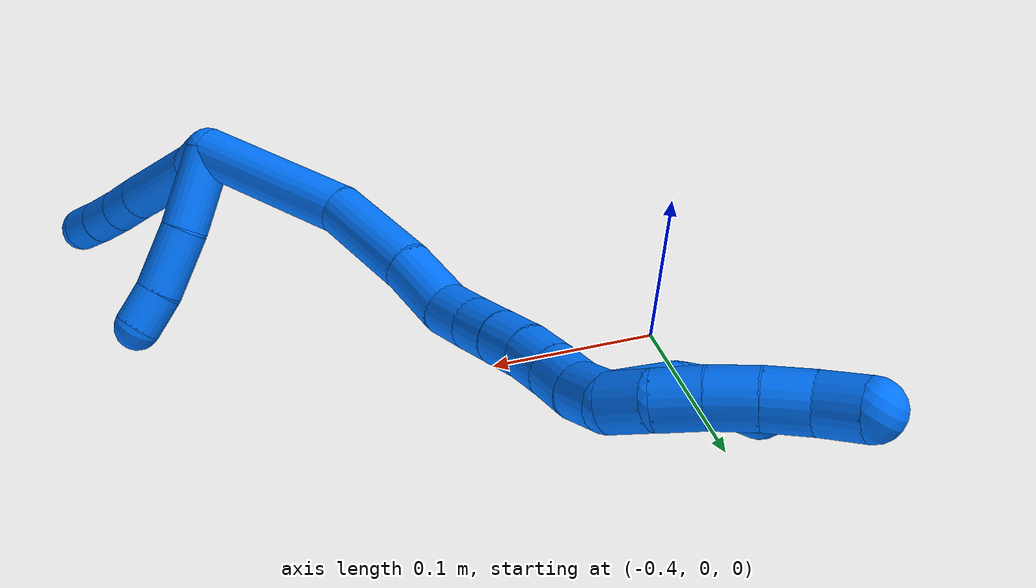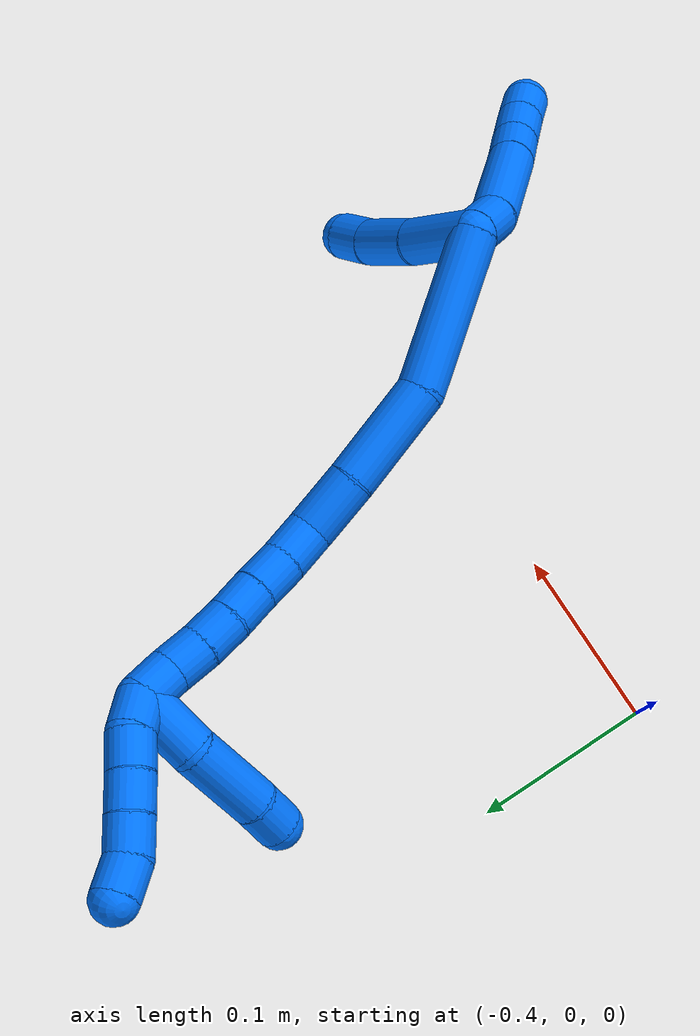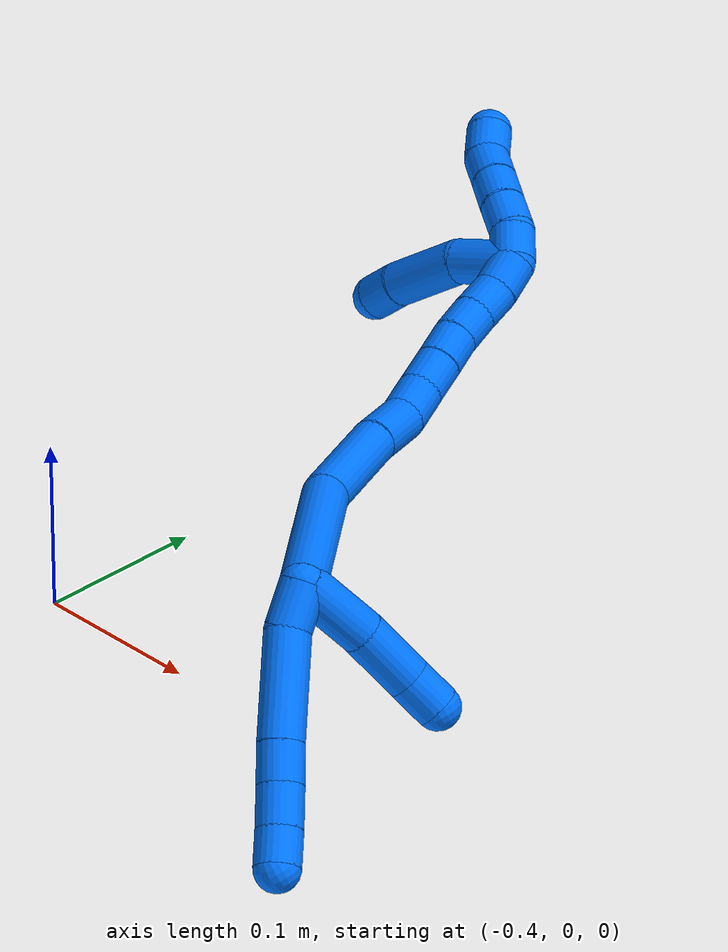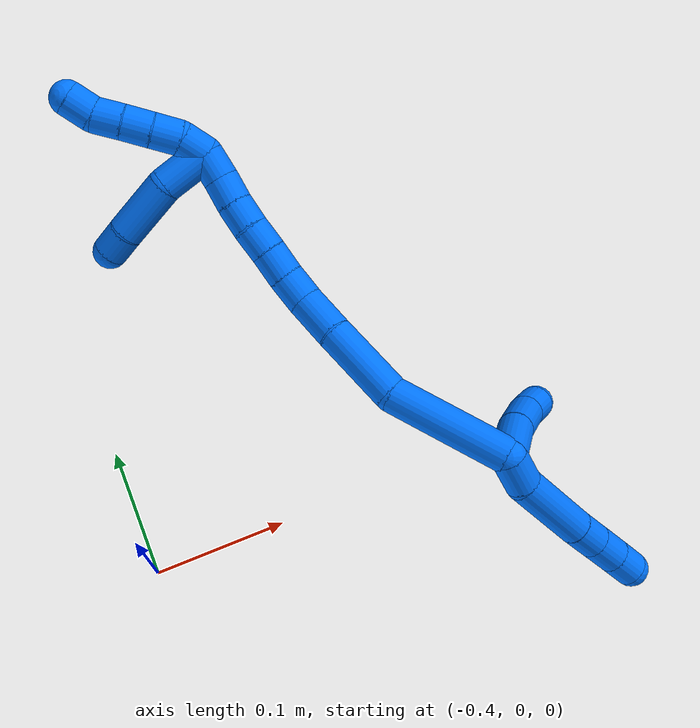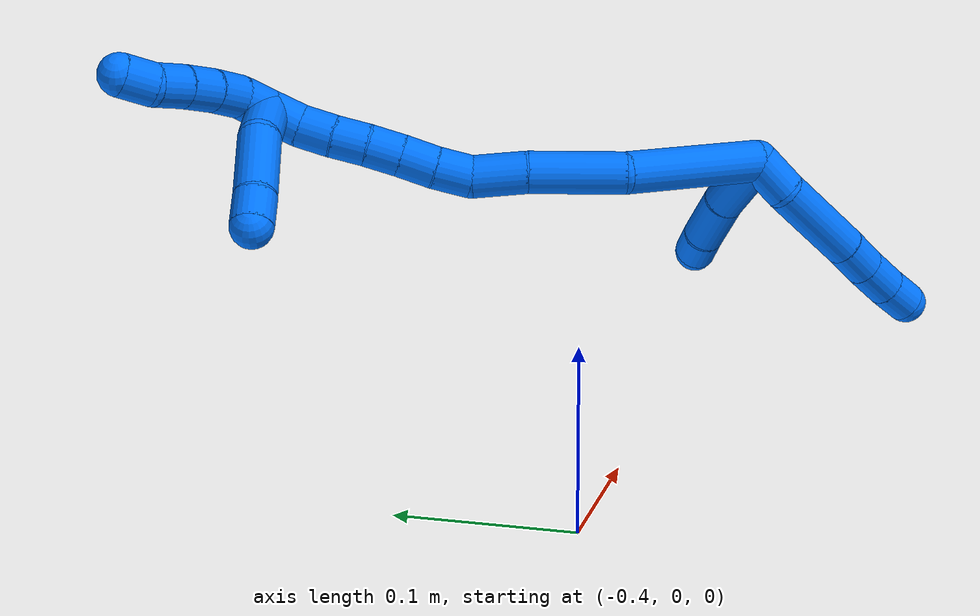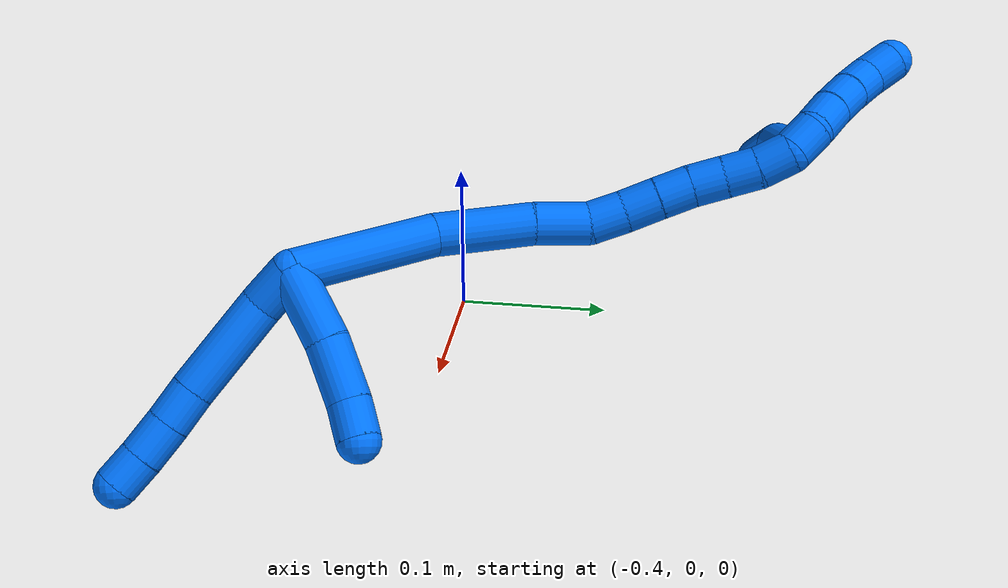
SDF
<sdf version="1.7">
 <world name="default">
  <model name="14">
   <static>0</static>
   <link name="14">
    <collision name="collision-cylinder-e_1_2_8">
     <pose>-0.007176 -0.006778 -0.008016 2.43964 -0.599633 -1.40238</pose>
     <geometry><cylinder><radius>0.0125</radius><length>0.025432</length></cylinder></geometry>
     <surface>
      <friction><ode><mu>1.16</mu><mu2>1.16</mu2><slip1>0</slip1><slip2>0</slip2></ode></friction>
      <contact><ode><kp>1e+06</kp><kd>1</kd><max_vel>0</max_vel><min_depth>0.001</min_depth></ode></contact>
     </surface>
    </collision>
    <visual name="visual-cylinder-e_1_2_8">
     <pose>-0.007176 -0.006778 -0.008016 2.43964 -0.599633 -1.40238</pose>
     <geometry><cylinder><radius>0.0125</radius><length>0.025432</length></cylinder></geometry>
     <material><ambient>0 0.462745 1 1</ambient></material>
    </visual>
    <collision name="collision-cylinder-e_2_8_9">
     <pose>-0.023122 -0.031347 -0.038034 2.46165 -0.300543 -0.808949</pose>
     <geometry><cylinder><radius>0.0125</radius><length>0.059246</length></cylinder></geometry>
     <surface>
      <friction><ode><mu>1.16</mu><mu2>1.16</mu2><slip1>0</slip1><slip2>0</slip2></ode></friction>
      <contact><ode><kp>1e+06</kp><kd>1</kd><max_vel>0</max_vel><min_depth>0.001</min_depth></ode></contact>
     </surface>
    </collision>
    <visual name="visual-cylinder-e_2_8_9">
     <pose>-0.023122 -0.031347 -0.038034 2.46165 -0.300543 -0.808949</pose>
     <geometry><cylinder><radius>0.0125</radius><length>0.059246</length></cylinder></geometry>
     <material><ambient>0 0.462745 1 1</ambient></material>
    </visual>
    <collision name="collision-cylinder-e_3_9_10">
     <pose>-0.034832 -0.055425 -0.068583 2.50732 -0.270378 -0.785753</pose>
     <geometry><cylinder><radius>0.0125</radius><length>0.02202</length></cylinder></geometry>
     <surface>
      <friction><ode><mu>1.16</mu><mu2>1.16</mu2><slip1>0</slip1><slip2>0</slip2></ode></friction>
      <contact><ode><kp>1e+06</kp><kd>1</kd><max_vel>0</max_vel><min_depth>0.001</min_depth></ode></contact>
     </surface>
    </collision>
    <visual name="visual-cylinder-e_3_9_10">
     <pose>-0.034832 -0.055425 -0.068583 2.50732 -0.270378 -0.785753</pose>
     <geometry><cylinder><radius>0.0125</radius><length>0.02202</length></cylinder></geometry>
     <material><ambient>0 0.462745 1 1</ambient></material>
    </visual>
    <collision name="collision-cylinder-e_4_10_11">
     <pose>-0.040773 -0.068713 -0.085824 2.46377 -0.262557 -0.716769</pose>
     <geometry><cylinder><radius>0.0125</radius><length>0.023117</length></cylinder></geometry>
     <surface>
      <friction><ode><mu>1.16</mu><mu2>1.16</mu2><slip1>0</slip1><slip2>0</slip2></ode></friction>
      <contact><ode><kp>1e+06</kp><kd>1</kd><max_vel>0</max_vel><min_depth>0.001</min_depth></ode></contact>
     </surface>
    </collision>
    <visual name="visual-cylinder-e_4_10_11">
     <pose>-0.040773 -0.068713 -0.085824 2.46377 -0.262557 -0.716769</pose>
     <geometry><cylinder><radius>0.0125</radius><length>0.023117</length></cylinder></geometry>
     <material><ambient>0 0.462745 1 1</ambient></material>
    </visual>
    <collision name="collision-cylinder-e_5_11_6">
     <pose>-0.046411 -0.082224 -0.101765 2.40953 -0.264455 -0.667983</pose>
     <geometry><cylinder><radius>0.0125</radius><length>0.020185</length></cylinder></geometry>
     <surface>
      <friction><ode><mu>1.16</mu><mu2>1.16</mu2><slip1>0</slip1><slip2>0</slip2></ode></friction>
      <contact><ode><kp>1e+06</kp><kd>1</kd><max_vel>0</max_vel><min_depth>0.001</min_depth></ode></contact>
     </surface>
    </collision>
    <visual name="visual-cylinder-e_5_11_6">
     <pose>-0.046411 -0.082224 -0.101765 2.40953 -0.264455 -0.667983</pose>
     <geometry><cylinder><radius>0.0125</radius><length>0.020185</length></cylinder></geometry>
     <material><ambient>0 0.462745 1 1</ambient></material>
    </visual>
    <collision name="collision-cylinder-e_1_2_12">
     <pose>0.003874 0.008008 -0.019588 -2.75352 0.181048 -0.86545</pose>
     <geometry><cylinder><radius>0.0125</radius><length>0.043026</length></cylinder></geometry>
     <surface>
      <friction><ode><mu>1.16</mu><mu2>1.16</mu2><slip1>0</slip1><slip2>0</slip2></ode></friction>
      <contact><ode><kp>1e+06</kp><kd>1</kd><max_vel>0</max_vel><min_depth>0.001</min_depth></ode></contact>
     </surface>
    </collision>
    <visual name="visual-cylinder-e_1_2_12">
     <pose>0.003874 0.008008 -0.019588 -2.75352 0.181048 -0.86545</pose>
     <geometry><cylinder><radius>0.0125</radius><length>0.043026</length></cylinder></geometry>
     <material><ambient>0 0.462745 1 1</ambient></material>
    </visual>
    <collision name="collision-cylinder-e_2_12_13">
     <pose>0.010522 0.020522 -0.056022 -2.88021 0.157793 -1.08304</pose>
     <geometry><cylinder><radius>0.0125</radius><length>0.035317</length></cylinder></geometry>
     <surface>
      <friction><ode><mu>1.16</mu><mu2>1.16</mu2><slip1>0</slip1><slip2>0</slip2></ode></friction>
      <contact><ode><kp>1e+06</kp><kd>1</kd><max_vel>0</max_vel><min_depth>0.001</min_depth></ode></contact>
     </surface>
    </collision>
    <visual name="visual-cylinder-e_2_12_13">
     <pose>0.010522 0.020522 -0.056022 -2.88021 0.157793 -1.08304</pose>
     <geometry><cylinder><radius>0.0125</radius><length>0.035317</length></cylinder></geometry>
     <material><ambient>0 0.462745 1 1</ambient></material>
    </visual>
    <collision name="collision-cylinder-e_3_13_5">
     <pose>0.015875 0.026384 -0.083299 -3.0123 0.240396 -2.15758</pose>
     <geometry><cylinder><radius>0.0125</radius><length>0.021657</length></cylinder></geometry>
     <surface>
      <friction><ode><mu>1.16</mu><mu2>1.16</mu2><slip1>0</slip1><slip2>0</slip2></ode></friction>
      <contact><ode><kp>1e+06</kp><kd>1</kd><max_vel>0</max_vel><min_depth>0.001</min_depth></ode></contact>
     </surface>
    </collision>
    <visual name="visual-cylinder-e_3_13_5">
     <pose>0.015875 0.026384 -0.083299 -3.0123 0.240396 -2.15758</pose>
     <geometry><cylinder><radius>0.0125</radius><length>0.021657</length></cylinder></geometry>
     <material><ambient>0 0.462745 1 1</ambient></material>
    </visual>
    <collision name="collision-cylinder-e_1_2_14">
     <pose>-0.001848 0.042261 0.010521 -1.3268 -0.042417 0.033154</pose>
     <geometry><cylinder><radius>0.0125</radius><length>0.08718</length></cylinder></geometry>
     <surface>
      <friction><ode><mu>1.16</mu><mu2>1.16</mu2><slip1>0</slip1><slip2>0</slip2></ode></friction>
      <contact><ode><kp>1e+06</kp><kd>1</kd><max_vel>0</max_vel><min_depth>0.001</min_depth></ode></contact>
     </surface>
    </collision>
    <visual name="visual-cylinder-e_1_2_14">
     <pose>-0.001848 0.042261 0.010521 -1.3268 -0.042417 0.033154</pose>
     <geometry><cylinder><radius>0.0125</radius><length>0.08718</length></cylinder></geometry>
     <material><ambient>0 0.462745 1 1</ambient></material>
    </visual>
    <collision name="collision-cylinder-e_2_14_15">
     <pose>0.00323 0.112293 0.023253 -1.49137 0.243697 -0.225234</pose>
     <geometry><cylinder><radius>0.0125</radius><length>0.057415</length></cylinder></geometry>
     <surface>
      <friction><ode><mu>1.16</mu><mu2>1.16</mu2><slip1>0</slip1><slip2>0</slip2></ode></friction>
      <contact><ode><kp>1e+06</kp><kd>1</kd><max_vel>0</max_vel><min_depth>0.001</min_depth></ode></contact>
     </surface>
    </collision>
    <visual name="visual-cylinder-e_2_14_15">
     <pose>0.00323 0.112293 0.023253 -1.49137 0.243697 -0.225234</pose>
     <geometry><cylinder><radius>0.0125</radius><length>0.057415</length></cylinder></geometry>
     <material><ambient>0 0.462745 1 1</ambient></material>
    </visual>
    <collision name="collision-cylinder-e_3_15_16">
     <pose>0.013745 0.155837 0.024945 -1.60364 0.223562 -0.230961</pose>
     <geometry><cylinder><radius>0.0125</radius><length>0.032369</length></cylinder></geometry>
     <surface>
      <friction><ode><mu>1.16</mu><mu2>1.16</mu2><slip1>0</slip1><slip2>0</slip2></ode></friction>
      <contact><ode><kp>1e+06</kp><kd>1</kd><max_vel>0</max_vel><min_depth>0.001</min_depth></ode></contact>
     </surface>
    </collision>
    <visual name="visual-cylinder-e_3_15_16">
     <pose>0.013745 0.155837 0.024945 -1.60364 0.223562 -0.230961</pose>
     <geometry><cylinder><radius>0.0125</radius><length>0.032369</length></cylinder></geometry>
     <material><ambient>0 0.462745 1 1</ambient></material>
    </visual>
    <collision name="collision-cylinder-e_4_16_17">
     <pose>0.021475 0.181281 0.027287 -1.28327 0.389686 -0.292762</pose>
     <geometry><cylinder><radius>0.0125</radius><length>0.021804</length></cylinder></geometry>
     <surface>
      <friction><ode><mu>1.16</mu><mu2>1.16</mu2><slip1>0</slip1><slip2>0</slip2></ode></friction>
      <contact><ode><kp>1e+06</kp><kd>1</kd><max_vel>0</max_vel><min_depth>0.001</min_depth></ode></contact>
     </surface>
    </collision>
    <visual name="visual-cylinder-e_4_16_17">
     <pose>0.021475 0.181281 0.027287 -1.28327 0.389686 -0.292762</pose>
     <geometry><cylinder><radius>0.0125</radius><length>0.021804</length></cylinder></geometry>
     <material><ambient>0 0.462745 1 1</ambient></material>
    </visual>
    <collision name="collision-cylinder-e_5_17_18">
     <pose>0.030361 0.19975 0.033214 -1.23528 0.47101 -0.337665</pose>
     <geometry><cylinder><radius>0.0125</radius><length>0.020913</length></cylinder></geometry>
     <surface>
      <friction><ode><mu>1.16</mu><mu2>1.16</mu2><slip1>0</slip1><slip2>0</slip2></ode></friction>
      <contact><ode><kp>1e+06</kp><kd>1</kd><max_vel>0</max_vel><min_depth>0.001</min_depth></ode></contact>
     </surface>
    </collision>
    <visual name="visual-cylinder-e_5_17_18">
     <pose>0.030361 0.19975 0.033214 -1.23528 0.47101 -0.337665</pose>
     <geometry><cylinder><radius>0.0125</radius><length>0.020913</length></cylinder></geometry>
     <material><ambient>0 0.462745 1 1</ambient></material>
    </visual>
    <collision name="collision-cylinder-e_6_18_19">
     <pose>0.039272 0.217196 0.039155 -1.25005 0.428718 -0.31161</pose>
     <geometry><cylinder><radius>0.0125</radius><length>0.020039</length></cylinder></geometry>
     <surface>
      <friction><ode><mu>1.16</mu><mu2>1.16</mu2><slip1>0</slip1><slip2>0</slip2></ode></friction>
      <contact><ode><kp>1e+06</kp><kd>1</kd><max_vel>0</max_vel><min_depth>0.001</min_depth></ode></contact>
     </surface>
    </collision>
    <visual name="visual-cylinder-e_6_18_19">
     <pose>0.039272 0.217196 0.039155 -1.25005 0.428718 -0.31161</pose>
     <geometry><cylinder><radius>0.0125</radius><length>0.020039</length></cylinder></geometry>
     <material><ambient>0 0.462745 1 1</ambient></material>
    </visual>
    <collision name="collision-cylinder-e_7_19_20">
     <pose>0.047922 0.234596 0.043975 -1.35191 0.463861 -0.374395</pose>
     <geometry><cylinder><radius>0.0125</radius><length>0.020049</length></cylinder></geometry>
     <surface>
      <friction><ode><mu>1.16</mu><mu2>1.16</mu2><slip1>0</slip1><slip2>0</slip2></ode></friction>
      <contact><ode><kp>1e+06</kp><kd>1</kd><max_vel>0</max_vel><min_depth>0.001</min_depth></ode></contact>
     </surface>
    </collision>
    <visual name="visual-cylinder-e_7_19_20">
     <pose>0.047922 0.234596 0.043975 -1.35191 0.463861 -0.374395</pose>
     <geometry><cylinder><radius>0.0125</radius><length>0.020049</length></cylinder></geometry>
     <material><ambient>0 0.462745 1 1</ambient></material>
    </visual>
    <collision name="collision-cylinder-e_8_20_21">
     <pose>0.057609 0.251726 0.047729 -1.35835 0.54548 -0.444169</pose>
     <geometry><cylinder><radius>0.0125</radius><length>0.020053</length></cylinder></geometry>
     <surface>
      <friction><ode><mu>1.16</mu><mu2>1.16</mu2><slip1>0</slip1><slip2>0</slip2></ode></friction>
      <contact><ode><kp>1e+06</kp><kd>1</kd><max_vel>0</max_vel><min_depth>0.001</min_depth></ode></contact>
     </surface>
    </collision>
    <visual name="visual-cylinder-e_8_20_21">
     <pose>0.057609 0.251726 0.047729 -1.35835 0.54548 -0.444169</pose>
     <geometry><cylinder><radius>0.0125</radius><length>0.020053</length></cylinder></geometry>
     <material><ambient>0 0.462745 1 1</ambient></material>
    </visual>
    <collision name="collision-cylinder-e_9_21_1">
     <pose>0.068044 0.267951 0.053121 -1.14231 0.545338 -0.355589</pose>
     <geometry><cylinder><radius>0.0125</radius><length>0.020178</length></cylinder></geometry>
     <surface>
      <friction><ode><mu>1.16</mu><mu2>1.16</mu2><slip1>0</slip1><slip2>0</slip2></ode></friction>
      <contact><ode><kp>1e+06</kp><kd>1</kd><max_vel>0</max_vel><min_depth>0.001</min_depth></ode></contact>
     </surface>
    </collision>
    <visual name="visual-cylinder-e_9_21_1">
     <pose>0.068044 0.267951 0.053121 -1.14231 0.545338 -0.355589</pose>
     <geometry><cylinder><radius>0.0125</radius><length>0.020178</length></cylinder></geometry>
     <material><ambient>0 0.462745 1 1</ambient></material>
    </visual>
    <collision name="collision-cylinder-e_1_1_22">
     <pose>0.057681 0.281275 0.062643 -0.74515 -1.09283 0.466732</pose>
     <geometry><cylinder><radius>0.0125</radius><length>0.03513</length></cylinder></geometry>
     <surface>
      <friction><ode><mu>1.16</mu><mu2>1.16</mu2><slip1>0</slip1><slip2>0</slip2></ode></friction>
      <contact><ode><kp>1e+06</kp><kd>1</kd><max_vel>0</max_vel><min_depth>0.001</min_depth></ode></contact>
     </surface>
    </collision>
    <visual name="visual-cylinder-e_1_1_22">
     <pose>0.057681 0.281275 0.062643 -0.74515 -1.09283 0.466732</pose>
     <geometry><cylinder><radius>0.0125</radius><length>0.03513</length></cylinder></geometry>
     <material><ambient>0 0.462745 1 1</ambient></material>
    </visual>
    <collision name="collision-cylinder-e_2_22_23">
     <pose>0.020508 0.29284 0.069238 -1.46325 -1.29432 1.19235</pose>
     <geometry><cylinder><radius>0.0125</radius><length>0.044855</length></cylinder></geometry>
     <surface>
      <friction><ode><mu>1.16</mu><mu2>1.16</mu2><slip1>0</slip1><slip2>0</slip2></ode></friction>
      <contact><ode><kp>1e+06</kp><kd>1</kd><max_vel>0</max_vel><min_depth>0.001</min_depth></ode></contact>
     </surface>
    </collision>
    <visual name="visual-cylinder-e_2_22_23">
     <pose>0.020508 0.29284 0.069238 -1.46325 -1.29432 1.19235</pose>
     <geometry><cylinder><radius>0.0125</radius><length>0.044855</length></cylinder></geometry>
     <material><ambient>0 0.462745 1 1</ambient></material>
    </visual>
    <collision name="collision-cylinder-e_3_23_4">
     <pose>-0.010497 0.302139 0.068941 -1.8596 -1.22931 1.51541</pose>
     <geometry><cylinder><radius>0.0125</radius><length>0.020015</length></cylinder></geometry>
     <surface>
      <friction><ode><mu>1.16</mu><mu2>1.16</mu2><slip1>0</slip1><slip2>0</slip2></ode></friction>
      <contact><ode><kp>1e+06</kp><kd>1</kd><max_vel>0</max_vel><min_depth>0.001</min_depth></ode></contact>
     </surface>
    </collision>
    <visual name="visual-cylinder-e_3_23_4">
     <pose>-0.010497 0.302139 0.068941 -1.8596 -1.22931 1.51541</pose>
     <geometry><cylinder><radius>0.0125</radius><length>0.020015</length></cylinder></geometry>
     <material><ambient>0 0.462745 1 1</ambient></material>
    </visual>
    <collision name="collision-cylinder-e_1_1_24">
     <pose>0.074677 0.28317 0.063313 -0.840066 0.140367 -0.062772</pose>
     <geometry><cylinder><radius>0.0125</radius><length>0.02</length></cylinder></geometry>
     <surface>
      <friction><ode><mu>1.16</mu><mu2>1.16</mu2><slip1>0</slip1><slip2>0</slip2></ode></friction>
      <contact><ode><kp>1e+06</kp><kd>1</kd><max_vel>0</max_vel><min_depth>0.001</min_depth></ode></contact>
     </surface>
    </collision>
    <visual name="visual-cylinder-e_1_1_24">
     <pose>0.074677 0.28317 0.063313 -0.840066 0.140367 -0.062772</pose>
     <geometry><cylinder><radius>0.0125</radius><length>0.02</length></cylinder></geometry>
     <material><ambient>0 0.462745 1 1</ambient></material>
    </visual>
    <collision name="collision-cylinder-e_2_24_25">
     <pose>0.074379 0.298005 0.076359 -0.858902 -0.170508 0.078235</pose>
     <geometry><cylinder><radius>0.0125</radius><length>0.02</length></cylinder></geometry>
     <surface>
      <friction><ode><mu>1.16</mu><mu2>1.16</mu2><slip1>0</slip1><slip2>0</slip2></ode></friction>
      <contact><ode><kp>1e+06</kp><kd>1</kd><max_vel>0</max_vel><min_depth>0.001</min_depth></ode></contact>
     </surface>
    </collision>
    <visual name="visual-cylinder-e_2_24_25">
     <pose>0.074379 0.298005 0.076359 -0.858902 -0.170508 0.078235</pose>
     <geometry><cylinder><radius>0.0125</radius><length>0.02</length></cylinder></geometry>
     <material><ambient>0 0.462745 1 1</ambient></material>
    </visual>
    <collision name="collision-cylinder-e_3_25_26">
     <pose>0.070839 0.313385 0.08862 -0.936765 -0.185342 0.093971</pose>
     <geometry><cylinder><radius>0.0125</radius><length>0.02</length></cylinder></geometry>
     <surface>
      <friction><ode><mu>1.16</mu><mu2>1.16</mu2><slip1>0</slip1><slip2>0</slip2></ode></friction>
      <contact><ode><kp>1e+06</kp><kd>1</kd><max_vel>0</max_vel><min_depth>0.001</min_depth></ode></contact>
     </surface>
    </collision>
    <visual name="visual-cylinder-e_3_25_26">
     <pose>0.070839 0.313385 0.08862 -0.936765 -0.185342 0.093971</pose>
     <geometry><cylinder><radius>0.0125</radius><length>0.02</length></cylinder></geometry>
     <material><ambient>0 0.462745 1 1</ambient></material>
    </visual>
    <collision name="collision-cylinder-e_4_26_27">
     <pose>0.066862 0.329516 0.099735 -0.998301 -0.215107 0.117595</pose>
     <geometry><cylinder><radius>0.0125</radius><length>0.02</length></cylinder></geometry>
     <surface>
      <friction><ode><mu>1.16</mu><mu2>1.16</mu2><slip1>0</slip1><slip2>0</slip2></ode></friction>
      <contact><ode><kp>1e+06</kp><kd>1</kd><max_vel>0</max_vel><min_depth>0.001</min_depth></ode></contact>
     </surface>
    </collision>
    <visual name="visual-cylinder-e_4_26_27">
     <pose>0.066862 0.329516 0.099735 -0.998301 -0.215107 0.117595</pose>
     <geometry><cylinder><radius>0.0125</radius><length>0.02</length></cylinder></geometry>
     <material><ambient>0 0.462745 1 1</ambient></material>
    </visual>
    <collision name="collision-cylinder-e_5_27_3">
     <pose>0.065915 0.346136 0.110308 -1.01 0.119011 -0.065845</pose>
     <geometry><cylinder><radius>0.0125</radius><length>0.02</length></cylinder></geometry>
     <surface>
      <friction><ode><mu>1.16</mu><mu2>1.16</mu2><slip1>0</slip1><slip2>0</slip2></ode></friction>
      <contact><ode><kp>1e+06</kp><kd>1</kd><max_vel>0</max_vel><min_depth>0.001</min_depth></ode></contact>
     </surface>
    </collision>
    <visual name="visual-cylinder-e_5_27_3">
     <pose>0.065915 0.346136 0.110308 -1.01 0.119011 -0.065845</pose>
     <geometry><cylinder><radius>0.0125</radius><length>0.02</length></cylinder></geometry>
     <material><ambient>0 0.462745 1 1</ambient></material>
    </visual>
    <collision name="collision-sphere-3">
     <pose>0.067102 0.354544 0.115589 0 -0 0</pose>
     <geometry><sphere><radius>0.0125</radius></sphere></geometry>
     <surface>
      <friction><ode><mu>1.16</mu><mu2>1.16</mu2><slip1>0</slip1><slip2>0</slip2></ode></friction>
      <contact><ode><kp>1e+06</kp><kd>1</kd><max_vel>0</max_vel><min_depth>0.001</min_depth></ode></contact>
     </surface>
    </collision>
    <visual name="visual-sphere-3">
     <pose>0.067102 0.354544 0.115589 0 -0 0</pose>
     <geometry><sphere><radius>0.0125</radius></sphere></geometry>
     <material><ambient>0 0.462745 1 1</ambient></material>
    </visual>
    <collision name="collision-sphere-27">
     <pose>0.064727 0.337727 0.105027 0 -0 0</pose>
     <geometry><sphere><radius>0.0125</radius></sphere></geometry>
     <surface>
      <friction><ode><mu>1.16</mu><mu2>1.16</mu2><slip1>0</slip1><slip2>0</slip2></ode></friction>
      <contact><ode><kp>1e+06</kp><kd>1</kd><max_vel>0</max_vel><min_depth>0.001</min_depth></ode></contact>
     </surface>
    </collision>
    <visual name="visual-sphere-27">
     <pose>0.064727 0.337727 0.105027 0 -0 0</pose>
     <geometry><sphere><radius>0.0125</radius></sphere></geometry>
     <material><ambient>0 0.462745 1 1</ambient></material>
    </visual>
    <collision name="collision-sphere-26">
     <pose>0.068996 0.321304 0.094442 0 -0 0</pose>
     <geometry><sphere><radius>0.0125</radius></sphere></geometry>
     <surface>
      <friction><ode><mu>1.16</mu><mu2>1.16</mu2><slip1>0</slip1><slip2>0</slip2></ode></friction>
      <contact><ode><kp>1e+06</kp><kd>1</kd><max_vel>0</max_vel><min_depth>0.001</min_depth></ode></contact>
     </surface>
    </collision>
    <visual name="visual-sphere-26">
     <pose>0.068996 0.321304 0.094442 0 -0 0</pose>
     <geometry><sphere><radius>0.0125</radius></sphere></geometry>
     <material><ambient>0 0.462745 1 1</ambient></material>
    </visual>
    <collision name="collision-sphere-25">
     <pose>0.072682 0.305467 0.082797 0 -0 0</pose>
     <geometry><sphere><radius>0.0125</radius></sphere></geometry>
     <surface>
      <friction><ode><mu>1.16</mu><mu2>1.16</mu2><slip1>0</slip1><slip2>0</slip2></ode></friction>
      <contact><ode><kp>1e+06</kp><kd>1</kd><max_vel>0</max_vel><min_depth>0.001</min_depth></ode></contact>
     </surface>
    </collision>
    <visual name="visual-sphere-25">
     <pose>0.072682 0.305467 0.082797 0 -0 0</pose>
     <geometry><sphere><radius>0.0125</radius></sphere></geometry>
     <material><ambient>0 0.462745 1 1</ambient></material>
    </visual>
    <collision name="collision-sphere-24">
     <pose>0.076076 0.290544 0.069921 0 -0 0</pose>
     <geometry><sphere><radius>0.0125</radius></sphere></geometry>
     <surface>
      <friction><ode><mu>1.16</mu><mu2>1.16</mu2><slip1>0</slip1><slip2>0</slip2></ode></friction>
      <contact><ode><kp>1e+06</kp><kd>1</kd><max_vel>0</max_vel><min_depth>0.001</min_depth></ode></contact>
     </surface>
    </collision>
    <visual name="visual-sphere-24">
     <pose>0.076076 0.290544 0.069921 0 -0 0</pose>
     <geometry><sphere><radius>0.0125</radius></sphere></geometry>
     <material><ambient>0 0.462745 1 1</ambient></material>
    </visual>
    <collision name="collision-sphere-4">
     <pose>-0.019926 0.305352 0.067986 0 -0 0</pose>
     <geometry><sphere><radius>0.0125</radius></sphere></geometry>
     <surface>
      <friction><ode><mu>1.16</mu><mu2>1.16</mu2><slip1>0</slip1><slip2>0</slip2></ode></friction>
      <contact><ode><kp>1e+06</kp><kd>1</kd><max_vel>0</max_vel><min_depth>0.001</min_depth></ode></contact>
     </surface>
    </collision>
    <visual name="visual-sphere-4">
     <pose>-0.019926 0.305352 0.067986 0 -0 0</pose>
     <geometry><sphere><radius>0.0125</radius></sphere></geometry>
     <material><ambient>0 0.462745 1 1</ambient></material>
    </visual>
    <collision name="collision-sphere-23">
     <pose>-0.001067 0.298927 0.069895 0 -0 0</pose>
     <geometry><sphere><radius>0.0125</radius></sphere></geometry>
     <surface>
      <friction><ode><mu>1.16</mu><mu2>1.16</mu2><slip1>0</slip1><slip2>0</slip2></ode></friction>
      <contact><ode><kp>1e+06</kp><kd>1</kd><max_vel>0</max_vel><min_depth>0.001</min_depth></ode></contact>
     </surface>
    </collision>
    <visual name="visual-sphere-23">
     <pose>-0.001067 0.298927 0.069895 0 -0 0</pose>
     <geometry><sphere><radius>0.0125</radius></sphere></geometry>
     <material><ambient>0 0.462745 1 1</ambient></material>
    </visual>
    <collision name="collision-sphere-22">
     <pose>0.042084 0.286754 0.068581 0 -0 0</pose>
     <geometry><sphere><radius>0.0125</radius></sphere></geometry>
     <surface>
      <friction><ode><mu>1.16</mu><mu2>1.16</mu2><slip1>0</slip1><slip2>0</slip2></ode></friction>
      <contact><ode><kp>1e+06</kp><kd>1</kd><max_vel>0</max_vel><min_depth>0.001</min_depth></ode></contact>
     </surface>
    </collision>
    <visual name="visual-sphere-22">
     <pose>0.042084 0.286754 0.068581 0 -0 0</pose>
     <geometry><sphere><radius>0.0125</radius></sphere></geometry>
     <material><ambient>0 0.462745 1 1</ambient></material>
    </visual>
    <collision name="collision-sphere-1">
     <pose>0.073278 0.275797 0.056704 0 -0 0</pose>
     <geometry><sphere><radius>0.0125</radius></sphere></geometry>
     <surface>
      <friction><ode><mu>1.16</mu><mu2>1.16</mu2><slip1>0</slip1><slip2>0</slip2></ode></friction>
      <contact><ode><kp>1e+06</kp><kd>1</kd><max_vel>0</max_vel><min_depth>0.001</min_depth></ode></contact>
     </surface>
    </collision>
    <visual name="visual-sphere-1">
     <pose>0.073278 0.275797 0.056704 0 -0 0</pose>
     <geometry><sphere><radius>0.0125</radius></sphere></geometry>
     <material><ambient>0 0.462745 1 1</ambient></material>
    </visual>
    <collision name="collision-sphere-21">
     <pose>0.062811 0.260105 0.049537 0 -0 0</pose>
     <geometry><sphere><radius>0.0125</radius></sphere></geometry>
     <surface>
      <friction><ode><mu>1.16</mu><mu2>1.16</mu2><slip1>0</slip1><slip2>0</slip2></ode></friction>
      <contact><ode><kp>1e+06</kp><kd>1</kd><max_vel>0</max_vel><min_depth>0.001</min_depth></ode></contact>
     </surface>
    </collision>
    <visual name="visual-sphere-21">
     <pose>0.062811 0.260105 0.049537 0 -0 0</pose>
     <geometry><sphere><radius>0.0125</radius></sphere></geometry>
     <material><ambient>0 0.462745 1 1</ambient></material>
    </visual>
    <collision name="collision-sphere-6">
     <pose>-0.049049 -0.088735 -0.109011 0 -0 0</pose>
     <geometry><sphere><radius>0.0125</radius></sphere></geometry>
     <surface>
      <friction><ode><mu>1.16</mu><mu2>1.16</mu2><slip1>0</slip1><slip2>0</slip2></ode></friction>
      <contact><ode><kp>1e+06</kp><kd>1</kd><max_vel>0</max_vel><min_depth>0.001</min_depth></ode></contact>
     </surface>
    </collision>
    <visual name="visual-sphere-6">
     <pose>-0.049049 -0.088735 -0.109011 0 -0 0</pose>
     <geometry><sphere><radius>0.0125</radius></sphere></geometry>
     <material><ambient>0 0.462745 1 1</ambient></material>
    </visual>
    <collision name="collision-sphere-11">
     <pose>-0.043773 -0.075713 -0.094519 0 -0 0</pose>
     <geometry><sphere><radius>0.0125</radius></sphere></geometry>
     <surface>
      <friction><ode><mu>1.16</mu><mu2>1.16</mu2><slip1>0</slip1><slip2>0</slip2></ode></friction>
      <contact><ode><kp>1e+06</kp><kd>1</kd><max_vel>0</max_vel><min_depth>0.001</min_depth></ode></contact>
     </surface>
    </collision>
    <visual name="visual-sphere-11">
     <pose>-0.043773 -0.075713 -0.094519 0 -0 0</pose>
     <geometry><sphere><radius>0.0125</radius></sphere></geometry>
     <material><ambient>0 0.462745 1 1</ambient></material>
    </visual>
    <collision name="collision-sphere-10">
     <pose>-0.037773 -0.061713 -0.077129 0 -0 0</pose>
     <geometry><sphere><radius>0.0125</radius></sphere></geometry>
     <surface>
      <friction><ode><mu>1.16</mu><mu2>1.16</mu2><slip1>0</slip1><slip2>0</slip2></ode></friction>
      <contact><ode><kp>1e+06</kp><kd>1</kd><max_vel>0</max_vel><min_depth>0.001</min_depth></ode></contact>
     </surface>
    </collision>
    <visual name="visual-sphere-10">
     <pose>-0.037773 -0.061713 -0.077129 0 -0 0</pose>
     <geometry><sphere><radius>0.0125</radius></sphere></geometry>
     <material><ambient>0 0.462745 1 1</ambient></material>
    </visual>
    <collision name="collision-sphere-9">
     <pose>-0.031892 -0.049138 -0.060037 0 -0 0</pose>
     <geometry><sphere><radius>0.0125</radius></sphere></geometry>
     <surface>
      <friction><ode><mu>1.16</mu><mu2>1.16</mu2><slip1>0</slip1><slip2>0</slip2></ode></friction>
      <contact><ode><kp>1e+06</kp><kd>1</kd><max_vel>0</max_vel><min_depth>0.001</min_depth></ode></contact>
     </surface>
    </collision>
    <visual name="visual-sphere-9">
     <pose>-0.031892 -0.049138 -0.060037 0 -0 0</pose>
     <geometry><sphere><radius>0.0125</radius></sphere></geometry>
     <material><ambient>0 0.462745 1 1</ambient></material>
    </visual>
    <collision name="collision-sphere-2">
     <geometry><sphere><radius>0.0125</radius></sphere></geometry>
     <surface>
      <friction><ode><mu>1.16</mu><mu2>1.16</mu2><slip1>0</slip1><slip2>0</slip2></ode></friction>
      <contact><ode><kp>1e+06</kp><kd>1</kd><max_vel>0</max_vel><min_depth>0.001</min_depth></ode></contact>
     </surface>
    </collision>
    <visual name="visual-sphere-2">
     <geometry><sphere><radius>0.0125</radius></sphere></geometry>
     <material><ambient>0 0.462745 1 1</ambient></material>
    </visual>
    <collision name="collision-sphere-19">
     <pose>0.043437 0.225845 0.042028 0 -0 0</pose>
     <geometry><sphere><radius>0.0125</radius></sphere></geometry>
     <surface>
      <friction><ode><mu>1.16</mu><mu2>1.16</mu2><slip1>0</slip1><slip2>0</slip2></ode></friction>
      <contact><ode><kp>1e+06</kp><kd>1</kd><max_vel>0</max_vel><min_depth>0.001</min_depth></ode></contact>
     </surface>
    </collision>
    <visual name="visual-sphere-19">
     <pose>0.043437 0.225845 0.042028 0 -0 0</pose>
     <geometry><sphere><radius>0.0125</radius></sphere></geometry>
     <material><ambient>0 0.462745 1 1</ambient></material>
    </visual>
    <collision name="collision-sphere-8">
     <pose>-0.014352 -0.013557 -0.016032 0 -0 0</pose>
     <geometry><sphere><radius>0.0125</radius></sphere></geometry>
     <surface>
      <friction><ode><mu>1.16</mu><mu2>1.16</mu2><slip1>0</slip1><slip2>0</slip2></ode></friction>
      <contact><ode><kp>1e+06</kp><kd>1</kd><max_vel>0</max_vel><min_depth>0.001</min_depth></ode></contact>
     </surface>
    </collision>
    <visual name="visual-sphere-8">
     <pose>-0.014352 -0.013557 -0.016032 0 -0 0</pose>
     <geometry><sphere><radius>0.0125</radius></sphere></geometry>
     <material><ambient>0 0.462745 1 1</ambient></material>
    </visual>
    <collision name="collision-sphere-12">
     <pose>0.007747 0.016015 -0.039176 0 -0 0</pose>
     <geometry><sphere><radius>0.0125</radius></sphere></geometry>
     <surface>
      <friction><ode><mu>1.16</mu><mu2>1.16</mu2><slip1>0</slip1><slip2>0</slip2></ode></friction>
      <contact><ode><kp>1e+06</kp><kd>1</kd><max_vel>0</max_vel><min_depth>0.001</min_depth></ode></contact>
     </surface>
    </collision>
    <visual name="visual-sphere-12">
     <pose>0.007747 0.016015 -0.039176 0 -0 0</pose>
     <geometry><sphere><radius>0.0125</radius></sphere></geometry>
     <material><ambient>0 0.462745 1 1</ambient></material>
    </visual>
    <collision name="collision-sphere-13">
     <pose>0.013297 0.025028 -0.072869 0 -0 0</pose>
     <geometry><sphere><radius>0.0125</radius></sphere></geometry>
     <surface>
      <friction><ode><mu>1.16</mu><mu2>1.16</mu2><slip1>0</slip1><slip2>0</slip2></ode></friction>
      <contact><ode><kp>1e+06</kp><kd>1</kd><max_vel>0</max_vel><min_depth>0.001</min_depth></ode></contact>
     </surface>
    </collision>
    <visual name="visual-sphere-13">
     <pose>0.013297 0.025028 -0.072869 0 -0 0</pose>
     <geometry><sphere><radius>0.0125</radius></sphere></geometry>
     <material><ambient>0 0.462745 1 1</ambient></material>
    </visual>
    <collision name="collision-sphere-5">
     <pose>0.018453 0.02774 -0.093728 0 -0 0</pose>
     <geometry><sphere><radius>0.0125</radius></sphere></geometry>
     <surface>
      <friction><ode><mu>1.16</mu><mu2>1.16</mu2><slip1>0</slip1><slip2>0</slip2></ode></friction>
      <contact><ode><kp>1e+06</kp><kd>1</kd><max_vel>0</max_vel><min_depth>0.001</min_depth></ode></contact>
     </surface>
    </collision>
    <visual name="visual-sphere-5">
     <pose>0.018453 0.02774 -0.093728 0 -0 0</pose>
     <geometry><sphere><radius>0.0125</radius></sphere></geometry>
     <material><ambient>0 0.462745 1 1</ambient></material>
    </visual>
    <collision name="collision-sphere-14">
     <pose>-0.003697 0.084521 0.021042 0 -0 0</pose>
     <geometry><sphere><radius>0.0125</radius></sphere></geometry>
     <surface>
      <friction><ode><mu>1.16</mu><mu2>1.16</mu2><slip1>0</slip1><slip2>0</slip2></ode></friction>
      <contact><ode><kp>1e+06</kp><kd>1</kd><max_vel>0</max_vel><min_depth>0.001</min_depth></ode></contact>
     </surface>
    </collision>
    <visual name="visual-sphere-14">
     <pose>-0.003697 0.084521 0.021042 0 -0 0</pose>
     <geometry><sphere><radius>0.0125</radius></sphere></geometry>
     <material><ambient>0 0.462745 1 1</ambient></material>
    </visual>
    <collision name="collision-sphere-15">
     <pose>0.010157 0.140064 0.025463 0 -0 0</pose>
     <geometry><sphere><radius>0.0125</radius></sphere></geometry>
     <surface>
      <friction><ode><mu>1.16</mu><mu2>1.16</mu2><slip1>0</slip1><slip2>0</slip2></ode></friction>
      <contact><ode><kp>1e+06</kp><kd>1</kd><max_vel>0</max_vel><min_depth>0.001</min_depth></ode></contact>
     </surface>
    </collision>
    <visual name="visual-sphere-15">
     <pose>0.010157 0.140064 0.025463 0 -0 0</pose>
     <geometry><sphere><radius>0.0125</radius></sphere></geometry>
     <material><ambient>0 0.462745 1 1</ambient></material>
    </visual>
    <collision name="collision-sphere-16">
     <pose>0.017333 0.17161 0.024427 0 -0 0</pose>
     <geometry><sphere><radius>0.0125</radius></sphere></geometry>
     <surface>
      <friction><ode><mu>1.16</mu><mu2>1.16</mu2><slip1>0</slip1><slip2>0</slip2></ode></friction>
      <contact><ode><kp>1e+06</kp><kd>1</kd><max_vel>0</max_vel><min_depth>0.001</min_depth></ode></contact>
     </surface>
    </collision>
    <visual name="visual-sphere-16">
     <pose>0.017333 0.17161 0.024427 0 -0 0</pose>
     <geometry><sphere><radius>0.0125</radius></sphere></geometry>
     <material><ambient>0 0.462745 1 1</ambient></material>
    </visual>
    <collision name="collision-sphere-17">
     <pose>0.025617 0.190952 0.030146 0 -0 0</pose>
     <geometry><sphere><radius>0.0125</radius></sphere></geometry>
     <surface>
      <friction><ode><mu>1.16</mu><mu2>1.16</mu2><slip1>0</slip1><slip2>0</slip2></ode></friction>
      <contact><ode><kp>1e+06</kp><kd>1</kd><max_vel>0</max_vel><min_depth>0.001</min_depth></ode></contact>
     </surface>
    </collision>
    <visual name="visual-sphere-17">
     <pose>0.025617 0.190952 0.030146 0 -0 0</pose>
     <geometry><sphere><radius>0.0125</radius></sphere></geometry>
     <material><ambient>0 0.462745 1 1</ambient></material>
    </visual>
    <collision name="collision-sphere-18">
     <pose>0.035106 0.208548 0.036282 0 -0 0</pose>
     <geometry><sphere><radius>0.0125</radius></sphere></geometry>
     <surface>
      <friction><ode><mu>1.16</mu><mu2>1.16</mu2><slip1>0</slip1><slip2>0</slip2></ode></friction>
      <contact><ode><kp>1e+06</kp><kd>1</kd><max_vel>0</max_vel><min_depth>0.001</min_depth></ode></contact>
     </surface>
    </collision>
    <visual name="visual-sphere-18">
     <pose>0.035106 0.208548 0.036282 0 -0 0</pose>
     <geometry><sphere><radius>0.0125</radius></sphere></geometry>
     <material><ambient>0 0.462745 1 1</ambient></material>
    </visual>
    <collision name="collision-sphere-20">
     <pose>0.052407 0.243347 0.045922 0 -0 0</pose>
     <geometry><sphere><radius>0.0125</radius></sphere></geometry>
     <surface>
      <friction><ode><mu>1.16</mu><mu2>1.16</mu2><slip1>0</slip1><slip2>0</slip2></ode></friction>
      <contact><ode><kp>1e+06</kp><kd>1</kd><max_vel>0</max_vel><min_depth>0.001</min_depth></ode></contact>
     </surface>
    </collision>
    <visual name="visual-sphere-20">
     <pose>0.052407 0.243347 0.045922 0 -0 0</pose>
     <geometry><sphere><radius>0.0125</radius></sphere></geometry>
     <material><ambient>0 0.462745 1 1</ambient></material>
    </visual>
    <inertial>
     <pose>0.016428 0.131236 0.014489 0 -0 0</pose>
     <mass>0.75</mass>
     <inertia><ixx>8.4e-05</ixx><ixy>0</ixy><ixz>0</ixz><iyy>1.7e-05</iyy><iyz>0</iyz><izz>-7.7e-05</izz></inertia>
    </inertial>
   </link>
   <pose>-0.15238 -0.051273 0.146179 -0.208384 -0.578654 0.609133</pose>
  </model>
 </world>
</sdf>
